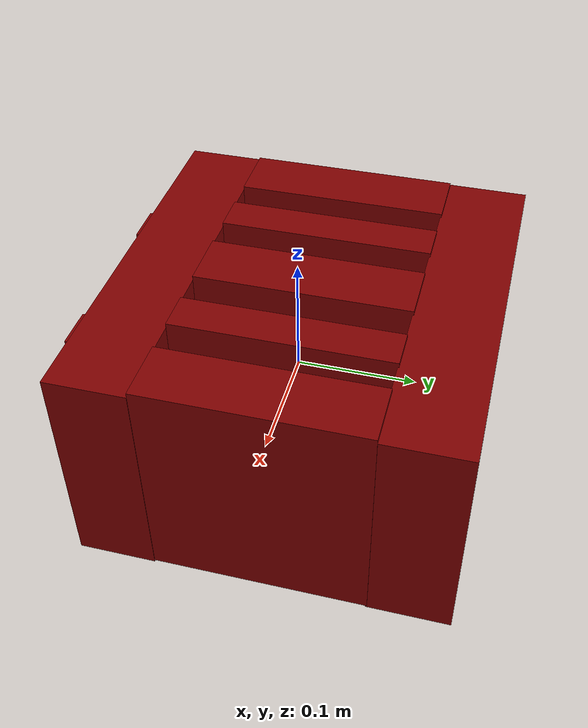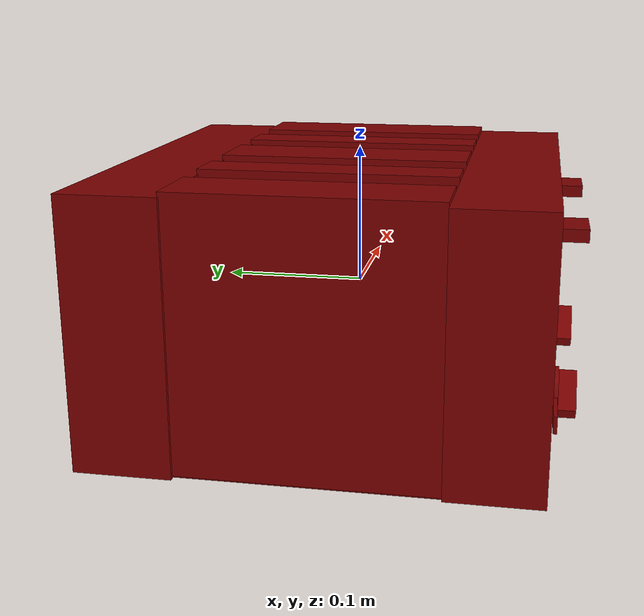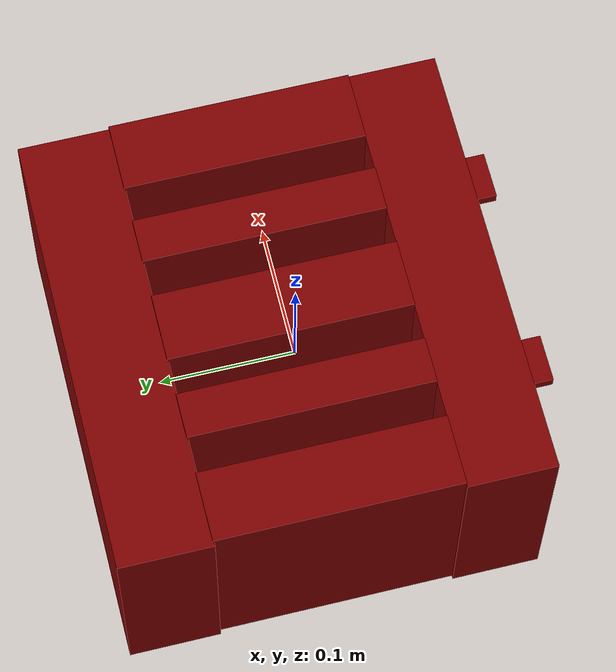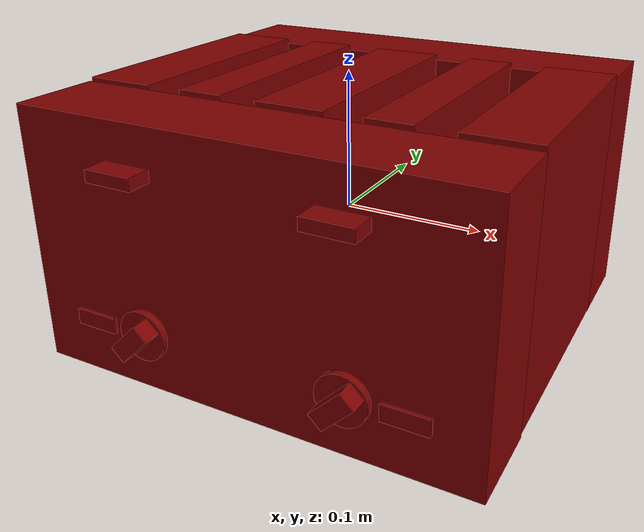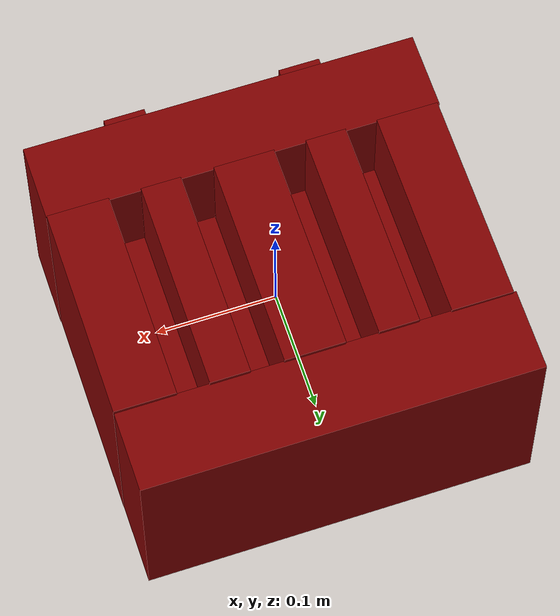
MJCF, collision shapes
<?xml version='1.0' encoding='UTF-8'?>
<mujoco model="model">
  <option timestep="0.002" gravity="0.0 0.0 -9.81"/>
  <compiler angle="radian"/>
  <asset>
    <mesh file="visuals/sideL_button_cancel.obj" name="sideL_button_cancel_vis"/>
    <mesh file="visuals/sideL_knob_doneness.obj" name="sideL_knob_doneness_vis"/>
    <mesh file="visuals/sideL_lever.obj" name="sideL_lever_vis"/>
    <mesh file="visuals/sideR_button_cancel.obj" name="sideR_button_cancel_vis"/>
    <mesh file="visuals/sideR_knob_doneness.obj" name="sideR_knob_doneness_vis"/>
    <mesh file="visuals/sideR_lever.obj" name="sideR_lever_vis"/>
    <mesh file="visuals/Body001.obj" name="Body001_vis"/>
    <texture file="visuals/T_BC001.png" name="Body001_material" type="2d"/>
    <material name="Body001_material" rgba="1 1 1 1.0" texture="Body001_material" shininess="0.1" specular="5"/>
    <texture file="visuals/T_BC001.png" name="sideL_button_cancel_material" type="2d"/>
    <material name="sideL_button_cancel_material" rgba="1 1 1 1.0" texture="sideL_button_cancel_material" shininess="0.1" specular="5"/>
    <texture file="visuals/T_BC001.png" name="sideL_knob_doneness_material" type="2d"/>
    <material name="sideL_knob_doneness_material" rgba="1 1 1 1.0" texture="sideL_knob_doneness_material" shininess="0.1" specular="5"/>
    <texture file="visuals/T_BC001.png" name="sideL_lever_material" type="2d"/>
    <material name="sideL_lever_material" rgba="1 1 1 1.0" texture="sideL_lever_material" shininess="0.1" specular="5"/>
    <texture file="visuals/T_BC001.png" name="sideR_button_cancel_material" type="2d"/>
    <material name="sideR_button_cancel_material" rgba="1 1 1 1.0" texture="sideR_button_cancel_material" shininess="0.1" specular="5"/>
    <texture file="visuals/T_BC001.png" name="sideR_knob_doneness_material" type="2d"/>
    <material name="sideR_knob_doneness_material" rgba="1 1 1 1.0" texture="sideR_knob_doneness_material" shininess="0.1" specular="5"/>
    <texture file="visuals/T_BC001.png" name="sideR_lever_material" type="2d"/>
    <material name="sideR_lever_material" rgba="1 1 1 1.0" texture="sideR_lever_material" shininess="0.1" specular="5"/>
  </asset>
  <default>
    <default class="visual">
      <geom conaffinity="0" contype="0" group="1" type="mesh"/>
    </default>
    <default class="collision_1">
      <geom group="0" rgba="0.5 0 0 0.5" solref="0.004 1" solimp="0.998 0.998 0.001"/>
    </default>
    <default class="collision_2">
      <geom group="0" rgba="0.5 0 0 0.5" solref="0.004 1" solimp="0.998 0.998 0.001"/>
    </default>
    <default class="collision_3">
      <geom group="0" rgba="0.5 0 0 0.5" solref="0.004 1" solimp="0.998 0.998 0.001"/>
    </default>
    <default class="collision_4">
      <geom group="0" rgba="0.5 0 0 0.5" solref="0.004 1" solimp="0.998 0.998 0.001"/>
    </default>
    <default class="collision_5">
      <geom group="0" rgba="0.5 0 0 0.5" solref="0.004 1" solimp="0.998 0.998 0.001"/>
    </default>
    <default class="collision_6">
      <geom group="0" rgba="0.5 0 0 0.5" solref="0.004 1" solimp="0.998 0.998 0.001"/>
    </default>
    <default class="collision_7">
      <geom group="0" rgba="0.5 0 0 0.5" solref="0.004 1" solimp="0.998 0.998 0.001"/>
    </default>
    <default class="spawn">
      <geom group="0" rgba="1 1 1 0.5" contype="0" conaffinity="0"/>
      <site group="0" rgba="1 1 1 0.5"/>
    </default>
    <default class="region">
      <geom group="1" conaffinity="0" contype="0" rgba="0 1 0 0" mass="0"/>
    </default>
  </default>
  <worldbody>
    <body>
      <body name="object">
        <geom mesh="Body001_vis" type="mesh" solimp="0.998 0.998 0.001" solref="0.001 1" friction="0.95 0.3 0.1" class="visual" material="Body001_material"/>
        <geom type="box" pos="-0.0012560514733195305 0.12971682846546173 -0.0017426153644919395" size="0.16246019303798676 0.03374330326914787 0.09306848794221878" quat="1.0 0.0 0.0 0.0" class="collision_1"/>
        <geom type="box" pos="-0.0006148911779746413 -0.11116699874401093 -0.0015051248483359814" size="0.16264528036117554 0.03222201019525528 0.0927574634552002" quat="1.0 0.0 0.0 0.0" class="collision_1"/>
        <geom type="box" pos="0.13630668818950653 0.009045934304594994 0.0010561231756582856" size="0.025313517078757286 0.08799093216657639 0.09395420551300049" quat="1.0 0.0 0.0 0.0" class="collision_1"/>
        <geom type="box" pos="-0.13585346937179565 0.009045934304594994 0.0007388443918898702" size="0.0253834817558527 0.08799093216657639 0.09363691508769989" quat="1.0 0.0 0.0 0.0" class="collision_1"/>
        <geom type="box" pos="-0.0678049698472023 0.009045934304594994 0.0010561231756582856" size="0.016553794965147972 0.08799093216657639 0.09395420551300049" quat="1.0 0.0 0.0 0.0" class="collision_1"/>
        <geom type="box" pos="8.098941179923713e-05 0.009045934304594994 0.0010561231756582856" size="0.024907933548092842 0.08799093216657639 0.09395420551300049" quat="1.0 0.0 0.0 0.0" class="collision_1"/>
        <geom type="box" pos="0.06841133534908295 0.009045934304594994 0.0010561231756582856" size="0.016349172219634056 0.08799093216657639 0.09395420551300049" quat="1.0 0.0 0.0 0.0" class="collision_1"/>
        <geom type="box" pos="-5.163844980415888e-05 0.013782797381281853 -0.06903751939535141" size="0.160116046667099 0.1482686698436737 0.025194332003593445" quat="1.0 0.0 0.0 0.0" class="collision_1"/>
        <body name="sideL_button_cancel">
          <joint axis="0.0 1.0 0.0" pos="-0.11383563280105591 -0.14538095891475677 -0.05240114778280258" limited="true" name="sideL_button_cancel_joint" range="0.0 0.0025" type="slide" damping="1" frictionloss="1" armature=".01" stiffness="4" springref="-1"/>
          <geom mesh="sideL_button_cancel_vis" type="mesh" solimp="0.998 0.998 0.001" solref="0.001 1" friction="0.95 0.3 0.1" class="visual" material="sideL_button_cancel_material"/>
          <geom class="collision_2" type="box" pos="-0.11383930593729019 -0.1463705152273178 -0.052384551614522934" size="0.015842219814658165 0.0013096303446218371 0.005820271093398333" quat="1.0 0.0 0.0 0.0" name="sideL_button_cancel_main"/>
        </body>
        <body name="sideL_knob_doneness">
          <joint axis="0.0 1.0 0.0" pos="-0.07382764667272568 -0.14924290776252747 -0.052457500249147415" limited="true" name="sideL_knob_doneness_joint" range="0.0 4.6774823953448035" type="hinge" damping="0.05" armature="1" frictionloss="0.75"/>
          <geom mesh="sideL_knob_doneness_vis" type="mesh" solimp="0.998 0.998 0.001" solref="0.001 1" friction="0.95 0.3 0.1" class="visual" material="sideL_knob_doneness_material"/>
          <geom type="cylinder" pos="-0.07373664528131485 -0.146297425031662 -0.05240565538406372" size="0.018016349524259567 0.002148986328393221" quat="0.7071067094802856 0.7071068286895752 0.0 0.0" class="collision_3" friction="100 0.5 0.01"/>
          <geom class="collision_3" type="box" pos="-0.0743117481470108 -0.15460531413555145 -0.052469756454229355" size="0.006345165893435478 0.00603867881000042 0.014894815161824226" quat="0.9238795042037964 0.0 0.3826834559440613 0.0" name="sideL_knob_doneness_main" friction="100 0.5 0.01"/>
        </body>
        <body name="sideL_lever">
          <joint axis="0.0 0.0 -1.0" pos="-0.07383695244789124 -0.15048380196094513 0.06355318427085876" limited="true" name="sideL_lever_joint" range="0.0 0.057999999999999996" type="slide" damping="1" frictionloss="1" armature=".1" stiffness="3.2" springref="-0.5"/>
          <geom class="region" name="reg_sideL_slotL" type="box" pos="-0.09734488651156425 0.008882109075784683 0.09173226542770863" size="0.012949364095926286 0.08735127916932106 0.07600000111758709"/>
          <geom class="region" name="reg_sideL_slotR" type="box" pos="-0.03838101960718632 0.008882109075784683 0.09173226542770863" size="0.013353362515568734 0.08735127916932106 0.07600000111758709"/>
          <geom mesh="sideL_lever_vis" type="mesh" solimp="0.998 0.998 0.001" solref="0.001 1" friction="0.95 0.3 0.1" class="visual" material="sideL_lever_material"/>
          <geom class="collision_4" type="box" pos="-0.07362759113311768 -0.1536025106906891 0.0610208697617054" size="0.017076076939702034 0.008703199215233326 0.0042862179689109325" quat="1.0 0.0 0.0 0.0" name="sideL_lever_handle"/>
          <geom class="collision_4" type="box" pos="-0.037956517189741135 0.009057892486453056 0.014988172799348831" size="0.012499943375587463 0.08546552807092667 0.0013593488838523626" quat="1.0 0.0 0.0 0.0" name="sideL_slotR_floor"/>
          <geom class="collision_4" type="box" pos="-0.09746018797159195 0.009057892486453056 0.014988172799348831" size="0.012499960139393806 0.08546552807092667 0.0013593488838523626" quat="1.0 0.0 0.0 0.0" name="sideL_slotL_floor"/>
        </body>
        <body name="sideR_button_cancel">
          <joint axis="0.0 1.0 0.0" pos="0.11383558809757233 -0.14538095891475677 -0.05240114778280258" limited="true" name="sideR_button_cancel_joint" range="0.0 0.0025" type="slide" damping="1" frictionloss="1" armature=".01" stiffness="4" springref="-1"/>
          <geom mesh="sideR_button_cancel_vis" type="mesh" solimp="0.998 0.998 0.001" solref="0.001 1" friction="0.95 0.3 0.1" class="visual" material="sideR_button_cancel_material"/>
          <geom class="collision_5" type="box" pos="0.1138099655508995 -0.14624431729316711 -0.05224185809493065" size="0.0158662311732769 0.0013519369531422853 0.006011961027979851" quat="1.0 0.0 0.0 0.0" name="sideR_button_cancel_main"/>
        </body>
        <body name="sideR_knob_doneness">
          <joint axis="0.0 1.0 0.0" pos="0.07377184182405472 -0.14924290776252747 -0.052457500249147415" limited="true" name="sideR_knob_doneness_joint" range="0.0 4.6774823953448035" type="hinge" damping="0.05" armature="1" frictionloss="0.75"/>
          <geom mesh="sideR_knob_doneness_vis" type="mesh" solimp="0.998 0.998 0.001" solref="0.001 1" friction="0.95 0.3 0.1" class="visual" material="sideR_knob_doneness_material"/>
          <geom type="cylinder" pos="0.07379748672246933 -0.14628790318965912 -0.0523960217833519" size="0.0178628321737051 0.0022610612213611603" quat="0.7071067094802856 0.7071068286895752 0.0 0.0" class="collision_6" friction="100 0.5 0.01"/>
          <geom class="collision_6" type="box" pos="0.07394041121006012 -0.15460531413555145 -0.052469756454229355" size="0.006345165893435478 0.00603867881000042 0.014894815161824226" quat="0.9238795042037964 0.0 0.3826834559440613 0.0" name="sideR_knob_doneness_main" friction="100 0.5 0.01"/>
        </body>
        <body name="sideR_lever">
          <joint axis="0.0 0.0 -1.0" pos="0.07383693754673004 -0.15048380196094513 0.06355318427085876" limited="true" name="sideR_lever_joint" range="0.0 0.057999999999999996" type="slide" damping="1" frictionloss="1" armature=".1" stiffness="3.2" springref="-0.5"/>
          <geom class="region" name="reg_sideR_slotL" type="box" pos="0.038619017228484154 0.008882109075784683 0.09173226542770863" size="0.013686735019087792 0.08735127916932106 0.07600000111758709"/>
          <geom class="region" name="reg_sideR_slotR" type="box" pos="0.09797613322734833 0.008882109075784683 0.09173226542770863" size="0.013448891997337342 0.08735127916932106 0.07600000111758709"/>
          <geom mesh="sideR_lever_vis" type="mesh" solimp="0.998 0.998 0.001" solref="0.001 1" friction="0.95 0.3 0.1" class="visual" material="sideR_lever_material"/>
          <geom class="collision_7" type="box" pos="0.074133962392807 -0.1536025106906891 0.0610208697617054" size="0.01707603968679905 0.008703179657459259 0.004286210518330336" quat="1.0 0.0 0.0 0.0" name="sideR_lever_handle"/>
          <geom class="collision_7" type="box" pos="0.09799081832170486 0.009057892486453056 0.014988172799348831" size="0.01249999925494194 0.08546552807092667 0.0013593488838523626" quat="1.0 0.0 0.0 0.0" name="sideR_slotR_floor"/>
          <geom class="collision_7" type="box" pos="0.03848715126514435 0.009057892486453056 0.014988172799348831" size="0.01249999925494194 0.08546552807092667 0.0013593488838523626" quat="1.0 0.0 0.0 0.0" name="sideR_slotL_floor"/>
        </body>
        <geom class="region" name="reg_main" type="box" pos="3.725290298461914e-09 0.009046092629432678 0.0" size="0.16220414435863495 0.15400731360912323 0.09523209726810455"/>
      </body>
    </body>
  </worldbody>
  <actuator>
    <motor name="sideL_button_cancel_joint_actuator" joint="sideL_button_cancel_joint" gear="0.5"/>
    <motor name="sideL_knob_doneness_joint_actuator" joint="sideL_knob_doneness_joint" gear="0.5"/>
    <motor name="sideL_lever_joint_actuator" joint="sideL_lever_joint" gear="0.5"/>
    <motor name="sideR_button_cancel_joint_actuator" joint="sideR_button_cancel_joint" gear="0.5"/>
    <motor name="sideR_knob_doneness_joint_actuator" joint="sideR_knob_doneness_joint" gear="0.5"/>
    <motor name="sideR_lever_joint_actuator" joint="sideR_lever_joint" gear="0.5"/>
  </actuator>
</mujoco>
